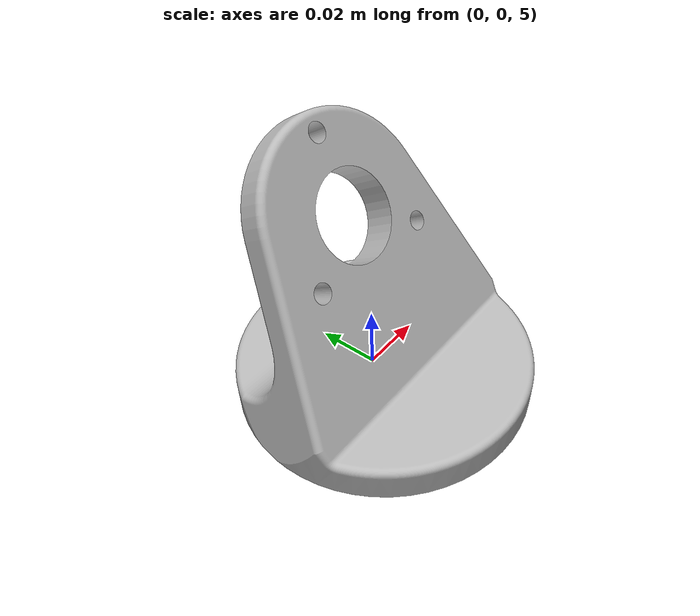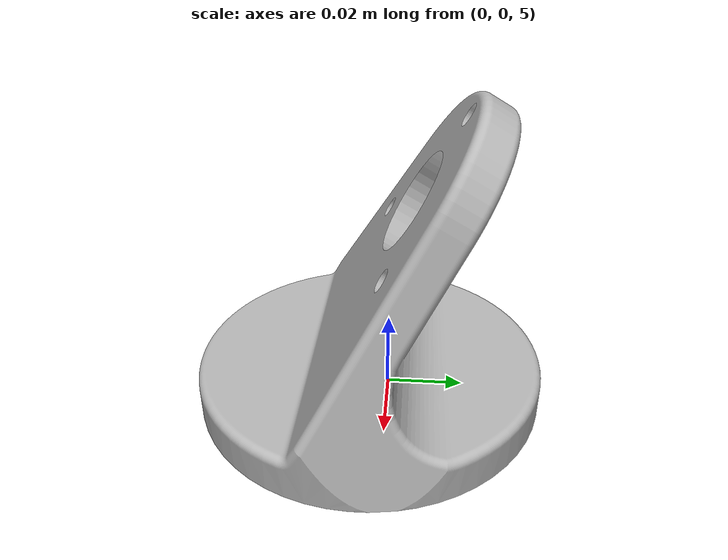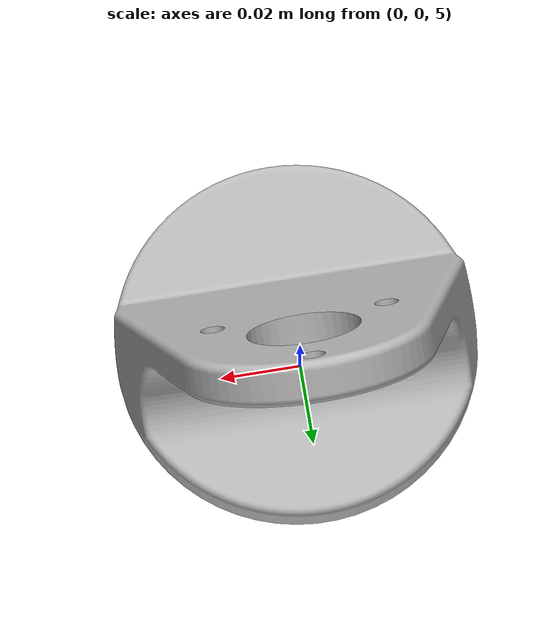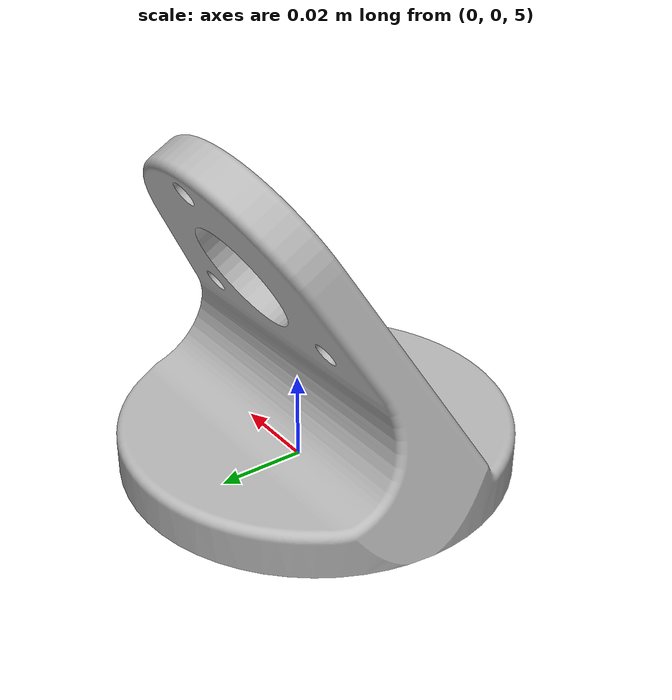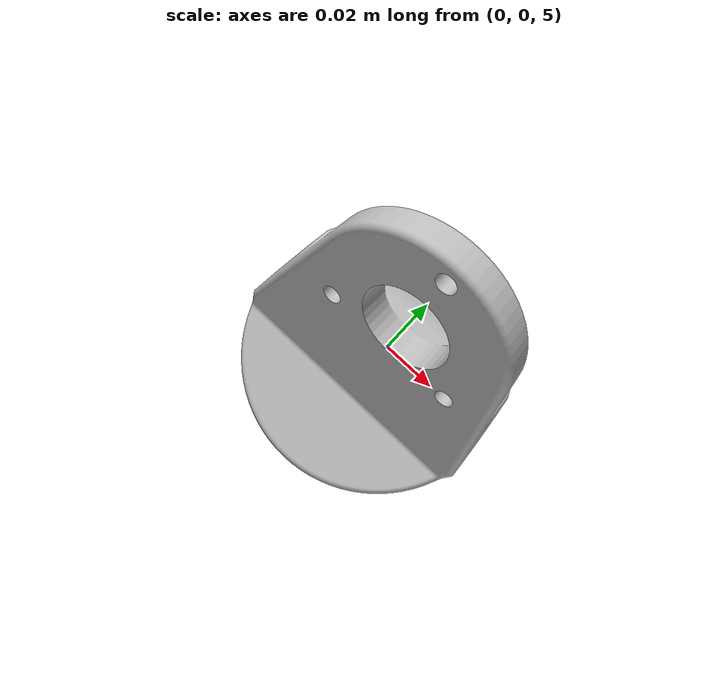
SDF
<?xml version="1.0" ?>

<sdf version="1.5">
	<world name="default">
		<!-- A global light source -->
		<include>
			<uri>model://sun</uri>
		</include>

		<!-- A ground plane -->
		<include>
			<uri>model://ground_plane</uri>
		</include>
		<!-- Our custom model -->
		<include>
			<uri>model://my_model</uri>
			<static>true</static>
			<pose>0 0 5 0 0 0</pose>
		</include>
	</world>
</sdf>

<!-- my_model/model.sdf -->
<sdf version="1.4">
  <model name='my_model'>
    <link name='my_link'>
      <inertial>
        <mass>1.0</mass>
        <inertia>
          <ixx>0.1</ixx>
          <ixy>0.0</ixy>
	  <ixz>0.0</ixz>
          <iyy>0.1</iyy>
          <iyz>0.0</iyz>
          <izz>0.1</izz>
        </inertia>
      </inertial>
      <collision name='my_collision'>
	<pose> -0.1 0.04 0 1.5708 0 0</pose>
        <geometry>
          <mesh>
            <uri>model://my_model/my_mesh.stl</uri>
            <scale>0.001 0.001 0.001</scale>
          </mesh>
        </geometry>
      </collision>
      <visual name='my_visual'>
	<pose> -0.1 0.04 0 1.5708 0 0</pose>
        <geometry>
          <mesh>
            <uri>model://my_model/my_mesh.stl</uri>
            <scale>0.001 0.001 0.001</scale>
          </mesh>
        </geometry>
      </visual>
    </link>
  </model>
</sdf>
